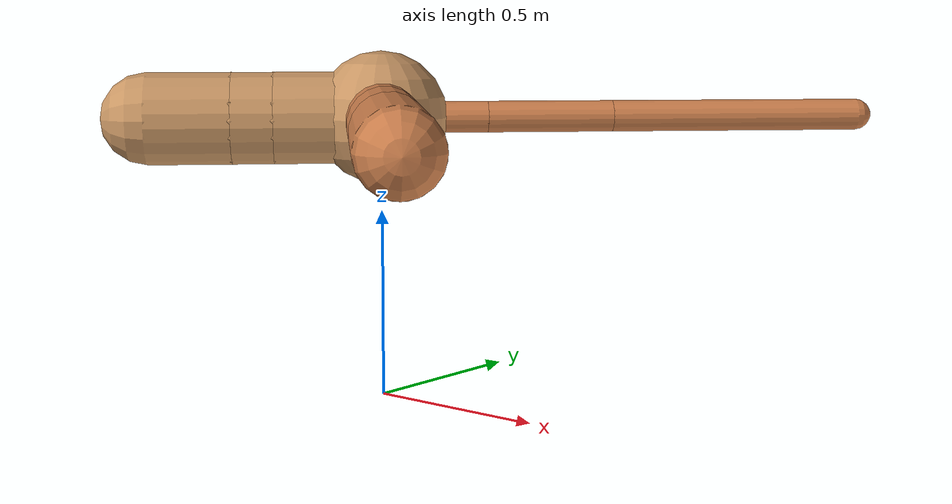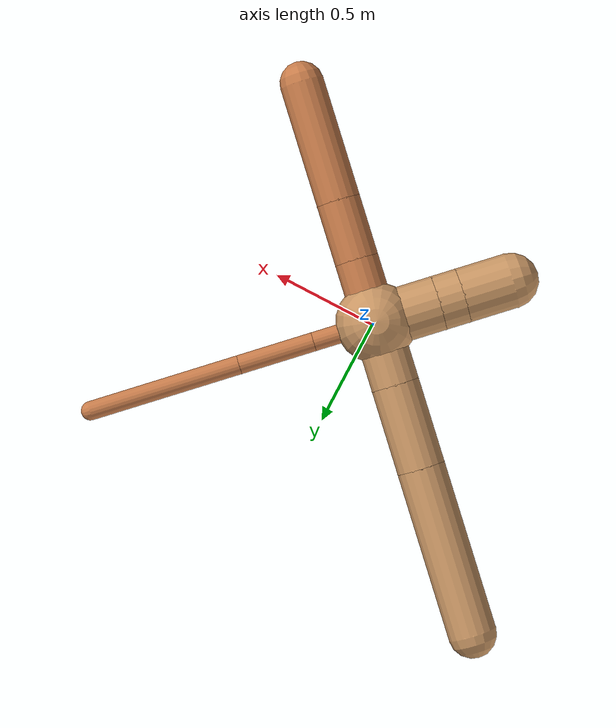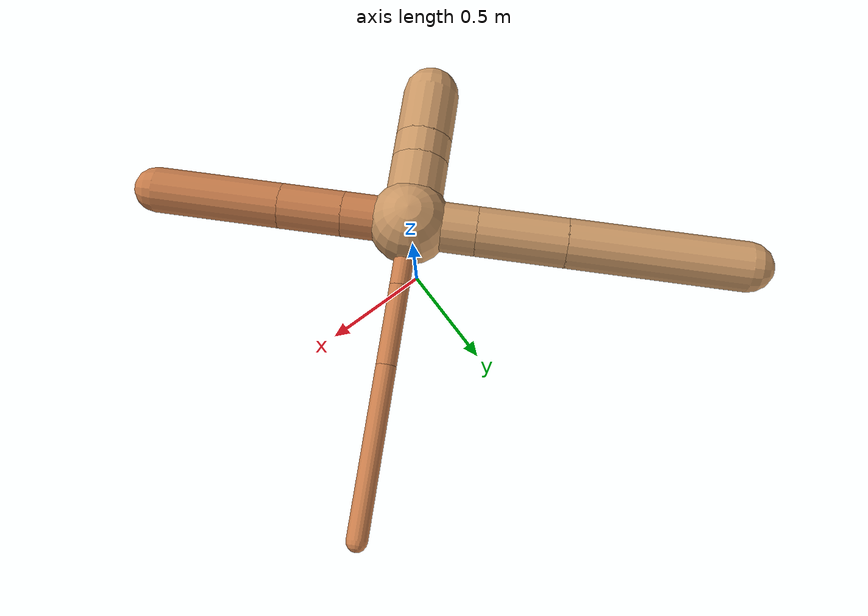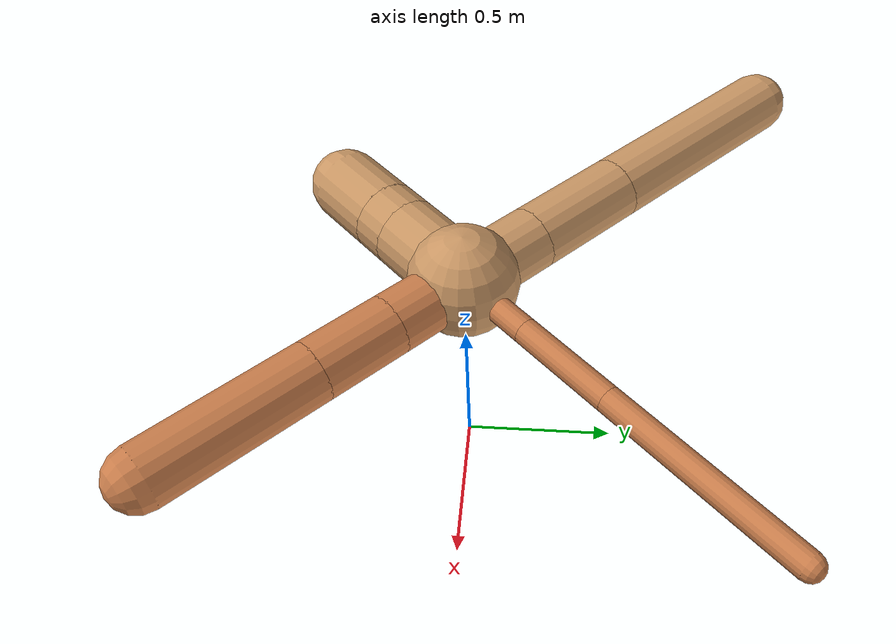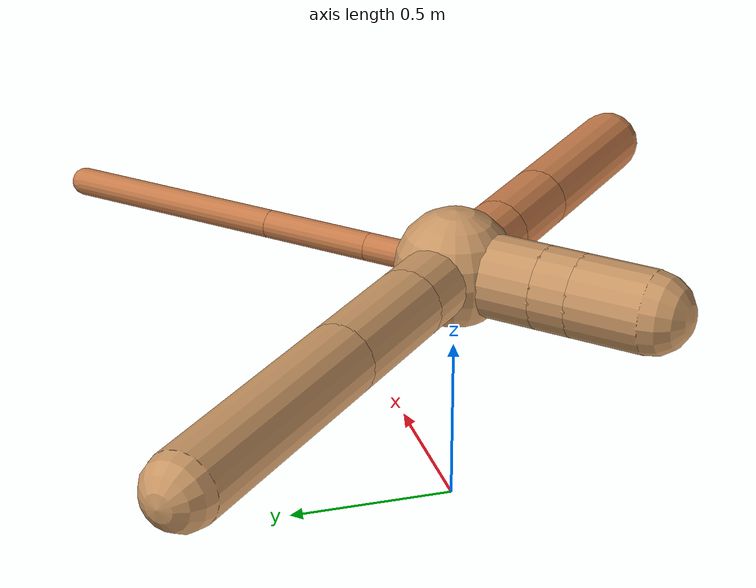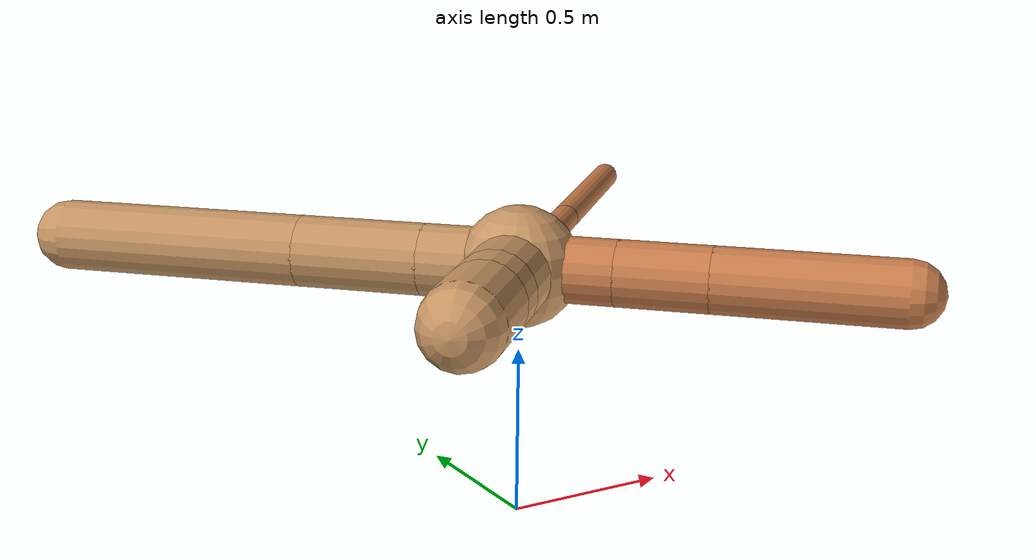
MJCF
<?xml version="1.0" ?>
<mujoco model="ant">

	<compiler angle="degree" coordinate="local" inertiafromgeom="true"/>

	<option integrator="RK4" timestep="0.01"/>

	<custom>

		<numeric data="0.0 0.0 0.55 1.0 0.0 0.0 0.0 0.0 1.0 0.0 -1.0 0.0 -1.0 0.0 1.0" name="init_qpos"/>

	</custom>

	<default>

		<joint armature="1" damping="1" limited="true"/>

		<geom conaffinity="0" condim="3" density="5.0" friction="1.5 0.1 0.1" margin="0.01" rgba="0.8 0.6 0.4 1"/>

	</default>

	<worldbody>

		<body name="torso" pos="0 0 0.75">

			<geom name="torso_geom" pos="0 0 0" size="0.17638222122066194" type="sphere"/>

			<!--joint armature="0" damping="0" limited="false" margin="0.01" name="root" pos="0 0 0" type="free"/-->

			<body name="front_left_leg" pos="0 0 0">

				<geom fromto="0 0 0 0.2 0.2 0" name="aux_1_geom" size="0.04184801938704215" type="capsule" rgba=".8 .5 .3 1"/>

				<body name="aux_1" pos="0.2 0.2 0">

					<joint axis="0 0 1" name="hip_1" pos="0.0 0.0 0.0" range="-40 40" type="hinge"/>

					<geom fromto="0 0 0 0.23805736500871047 0.23805736500871047 0" name="left_leg_geom" size="0.04184801938704215" type="capsule" rgba=".8 .5 .3 1"/>

					<body pos="0.23805736500871047 0.23805736500871047 0" name="front_left_foot">

						<joint axis="-1 1 0" name="ankle_1" pos="0.0 0.0 0.0" range="30 100" type="hinge"/>

						<geom fromto="0 0 0 0.47611473001742094 0.47611473001742094 0" name="left_ankle_geom" size="0.04184801938704215" type="capsule" rgba=".8 .5 .3 1"/>

					</body>

				</body>

			</body>

			<body name="front_right_leg" pos="0 0 0">

				<geom fromto="0 0 0 -0.2 0.2 0" name="aux_2_geom" size="0.10612944296562454" type="capsule"/>

				<body name="aux_2" pos="-0.2 0.2 0">

					<joint axis="0 0 1" name="hip_2" pos="0.0 0.0 0.0" range="-40 40" type="hinge"/>

					<geom fromto="0 0 0 -0.26624202640731603 0.26624202640731603 0" name="right_leg_geom" size="0.10612944296562454" type="capsule"/>

					<body pos="-0.26624202640731603 0.26624202640731603 0" name="front_right_foot">

						<joint axis="1 1 0" name="ankle_2" pos="0.0 0.0 0.0" range="-100 -30" type="hinge"/>

						<geom fromto="0 0 0 -0.5324840528146321 0.5324840528146321 0" name="right_ankle_geom" size="0.10612944296562454" type="capsule"/>

					</body>

				</body>

			</body>

			<body name="left_back_leg" pos="0 0 0">

				<geom fromto="0 0 0 -0.2 -0.2 0" name="aux_3_geom" size="0.12161723236339005" type="capsule"/>

				<body name="aux_3" pos="-0.2 -0.2 0">

					<joint axis="0 0 1" name="hip_3" pos="0.0 0.0 0.0" range="-40 40" type="hinge"/>

					<geom fromto="0 0 0 -0.07744015870020902 -0.07744015870020902 0" name="back_leg_geom" size="0.12161723236339005" type="capsule"/>

					<body pos="-0.07744015870020902 -0.07744015870020902 0" name="left_back_foot">

						<joint axis="-1 1 0" name="ankle_3" pos="0.0 0.0 0.0" range="-100 -30" type="hinge"/>

						<geom fromto="0 0 0 -0.15488031740041805 -0.15488031740041805 0" name="third_ankle_geom" size="0.12161723236339005" type="capsule"/>

					</body>

				</body>

			</body>

			<body name="right_back_leg" pos="0 0 0">

				<geom fromto="0 0 0 0.2 -0.2 0" name="aux_4_geom" size="0.09652245280053315" type="capsule" rgba=".8 .5 .3 1"/>

				<body name="aux_4" pos="0.2 -0.2 0">

					<joint axis="0 0 1" name="hip_4" pos="0.0 0.0 0.0" range="-40 40" type="hinge"/>

					<geom fromto="0 0 0 0.18895227351671373 -0.18895227351671373 0" name="rightback_leg_geom" size="0.09652245280053315" type="capsule" rgba=".8 .5 .3 1"/>

					<body pos="0.18895227351671373 -0.18895227351671373 0" name="right_back_foot">

						<joint axis="1 1 0" name="ankle_4" pos="0.0 0.0 0.0" range="30 100" type="hinge"/>

						<geom fromto="0 0 0 0.37790454703342746 -0.37790454703342746 0" name="fourth_ankle_geom" size="0.09652245280053315" type="capsule" rgba=".8 .5 .3 1"/>

					</body>

				</body>

			</body>

		</body>

	</worldbody>

	<actuator>

		<motor ctrllimited="true" ctrlrange="-1.0 1.0" joint="hip_4" gear="150"/>

		<motor ctrllimited="true" ctrlrange="-1.0 1.0" joint="ankle_4" gear="150"/>

		<motor ctrllimited="true" ctrlrange="-1.0 1.0" joint="hip_1" gear="150"/>

		<motor ctrllimited="true" ctrlrange="-1.0 1.0" joint="ankle_1" gear="150"/>

		<motor ctrllimited="true" ctrlrange="-1.0 1.0" joint="hip_2" gear="150"/>

		<motor ctrllimited="true" ctrlrange="-1.0 1.0" joint="ankle_2" gear="150"/>

		<motor ctrllimited="true" ctrlrange="-1.0 1.0" joint="hip_3" gear="150"/>

		<motor ctrllimited="true" ctrlrange="-1.0 1.0" joint="ankle_3" gear="150"/>

	</actuator>

</mujoco>
